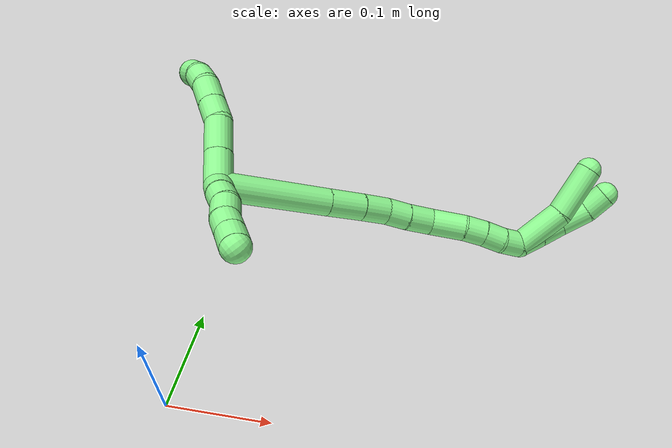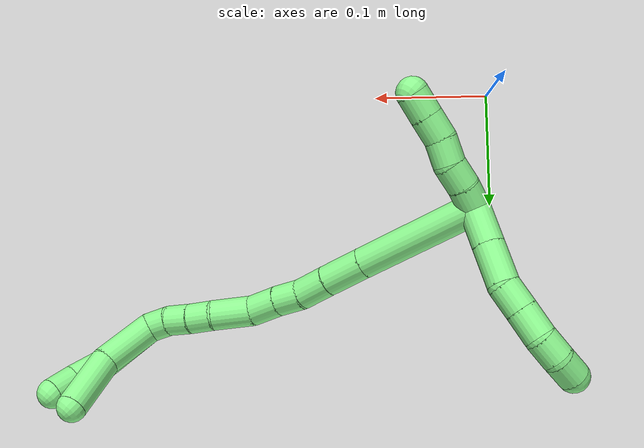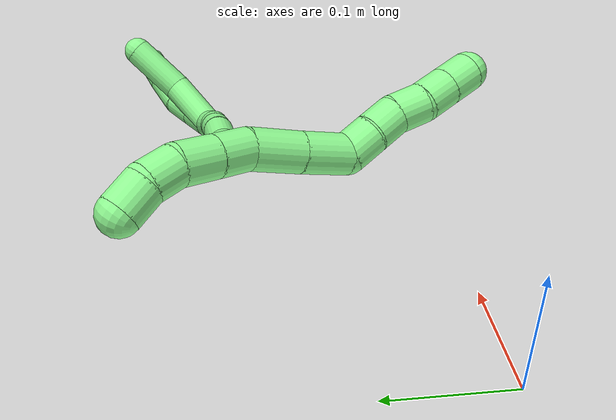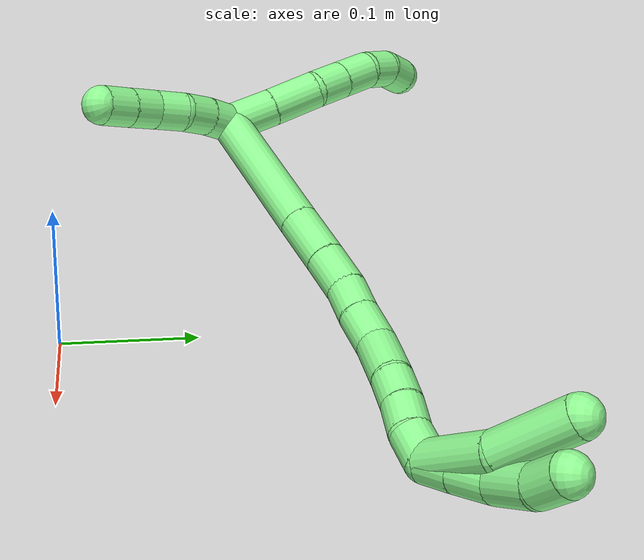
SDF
<sdf version="1.7">
 <world name="default">
  <model name="13">
   <static>0</static>
   <link name="13">
    <collision name="collision-cylinder-e_1_2_8">
     <pose>-0.003845 0.012459 0.008491 -0.97258 -0.249666 0.132477</pose>
     <geometry><cylinder><radius>0.0125</radius><length>0.03112</length></cylinder></geometry>
     <surface>
      <friction><ode><mu>1.16</mu><mu2>1.16</mu2><slip1>0</slip1><slip2>0</slip2></ode></friction>
      <contact><ode><kp>1e+06</kp><kd>1</kd><max_vel>0</max_vel><min_depth>0.001</min_depth></ode></contact>
     </surface>
    </collision>
    <visual name="visual-cylinder-e_1_2_8">
     <pose>-0.003845 0.012459 0.008491 -0.97258 -0.249666 0.132477</pose>
     <geometry><cylinder><radius>0.0125</radius><length>0.03112</length></cylinder></geometry>
     <material><ambient>0.564706 0.984314 0.572549 1</ambient></material>
    </visual>
    <collision name="collision-cylinder-e_2_8_9">
     <pose>-0.012112 0.037784 0.025992 -0.959865 -0.274465 0.143523</pose>
     <geometry><cylinder><radius>0.0125</radius><length>0.032634</length></cylinder></geometry>
     <surface>
      <friction><ode><mu>1.16</mu><mu2>1.16</mu2><slip1>0</slip1><slip2>0</slip2></ode></friction>
      <contact><ode><kp>1e+06</kp><kd>1</kd><max_vel>0</max_vel><min_depth>0.001</min_depth></ode></contact>
     </surface>
    </collision>
    <visual name="visual-cylinder-e_2_8_9">
     <pose>-0.012112 0.037784 0.025992 -0.959865 -0.274465 0.143523</pose>
     <geometry><cylinder><radius>0.0125</radius><length>0.032634</length></cylinder></geometry>
     <material><ambient>0.564706 0.984314 0.572549 1</ambient></material>
    </visual>
    <collision name="collision-cylinder-e_3_9_10">
     <pose>-0.019024 0.060961 0.038055 -1.2829 -0.227488 0.170213</pose>
     <geometry><cylinder><radius>0.0125</radius><length>0.022079</length></cylinder></geometry>
     <surface>
      <friction><ode><mu>1.16</mu><mu2>1.16</mu2><slip1>0</slip1><slip2>0</slip2></ode></friction>
      <contact><ode><kp>1e+06</kp><kd>1</kd><max_vel>0</max_vel><min_depth>0.001</min_depth></ode></contact>
     </surface>
    </collision>
    <visual name="visual-cylinder-e_3_9_10">
     <pose>-0.019024 0.060961 0.038055 -1.2829 -0.227488 0.170213</pose>
     <geometry><cylinder><radius>0.0125</radius><length>0.022079</length></cylinder></geometry>
     <material><ambient>0.564706 0.984314 0.572549 1</ambient></material>
    </visual>
    <collision name="collision-cylinder-e_4_10_11">
     <pose>-0.024205 0.082409 0.04458 -1.26862 -0.226754 0.16716</pose>
     <geometry><cylinder><radius>0.0125</radius><length>0.023941</length></cylinder></geometry>
     <surface>
      <friction><ode><mu>1.16</mu><mu2>1.16</mu2><slip1>0</slip1><slip2>0</slip2></ode></friction>
      <contact><ode><kp>1e+06</kp><kd>1</kd><max_vel>0</max_vel><min_depth>0.001</min_depth></ode></contact>
     </surface>
    </collision>
    <visual name="visual-cylinder-e_4_10_11">
     <pose>-0.024205 0.082409 0.04458 -1.26862 -0.226754 0.16716</pose>
     <geometry><cylinder><radius>0.0125</radius><length>0.023941</length></cylinder></geometry>
     <material><ambient>0.564706 0.984314 0.572549 1</ambient></material>
    </visual>
    <collision name="collision-cylinder-e_5_11_12">
     <pose>-0.027016 0.103504 0.048994 -1.47638 -0.01197 0.01089</pose>
     <geometry><cylinder><radius>0.0125</radius><length>0.020008</length></cylinder></geometry>
     <surface>
      <friction><ode><mu>1.16</mu><mu2>1.16</mu2><slip1>0</slip1><slip2>0</slip2></ode></friction>
      <contact><ode><kp>1e+06</kp><kd>1</kd><max_vel>0</max_vel><min_depth>0.001</min_depth></ode></contact>
     </surface>
    </collision>
    <visual name="visual-cylinder-e_5_11_12">
     <pose>-0.027016 0.103504 0.048994 -1.47638 -0.01197 0.01089</pose>
     <geometry><cylinder><radius>0.0125</radius><length>0.020008</length></cylinder></geometry>
     <material><ambient>0.564706 0.984314 0.572549 1</ambient></material>
    </visual>
    <collision name="collision-cylinder-e_6_12_6">
     <pose>-0.024328 0.123148 0.049228 -1.6439 0.281398 -0.302445</pose>
     <geometry><cylinder><radius>0.0125</radius><length>0.020218</length></cylinder></geometry>
     <surface>
      <friction><ode><mu>1.16</mu><mu2>1.16</mu2><slip1>0</slip1><slip2>0</slip2></ode></friction>
      <contact><ode><kp>1e+06</kp><kd>1</kd><max_vel>0</max_vel><min_depth>0.001</min_depth></ode></contact>
     </surface>
    </collision>
    <visual name="visual-cylinder-e_6_12_6">
     <pose>-0.024328 0.123148 0.049228 -1.6439 0.281398 -0.302445</pose>
     <geometry><cylinder><radius>0.0125</radius><length>0.020218</length></cylinder></geometry>
     <material><ambient>0.564706 0.984314 0.572549 1</ambient></material>
    </visual>
    <collision name="collision-cylinder-e_1_2_13">
     <pose>-0.003091 -0.009377 -0.001587 1.73842 -0.314248 -0.370677</pose>
     <geometry><cylinder><radius>0.0125</radius><length>0.02</length></cylinder></geometry>
     <surface>
      <friction><ode><mu>1.16</mu><mu2>1.16</mu2><slip1>0</slip1><slip2>0</slip2></ode></friction>
      <contact><ode><kp>1e+06</kp><kd>1</kd><max_vel>0</max_vel><min_depth>0.001</min_depth></ode></contact>
     </surface>
    </collision>
    <visual name="visual-cylinder-e_1_2_13">
     <pose>-0.003091 -0.009377 -0.001587 1.73842 -0.314248 -0.370677</pose>
     <geometry><cylinder><radius>0.0125</radius><length>0.02</length></cylinder></geometry>
     <material><ambient>0.564706 0.984314 0.572549 1</ambient></material>
    </visual>
    <collision name="collision-cylinder-e_2_13_14">
     <pose>-0.008111 -0.028502 -0.004296 1.68547 -0.194133 -0.2176</pose>
     <geometry><cylinder><radius>0.0125</radius><length>0.02</length></cylinder></geometry>
     <surface>
      <friction><ode><mu>1.16</mu><mu2>1.16</mu2><slip1>0</slip1><slip2>0</slip2></ode></friction>
      <contact><ode><kp>1e+06</kp><kd>1</kd><max_vel>0</max_vel><min_depth>0.001</min_depth></ode></contact>
     </surface>
    </collision>
    <visual name="visual-cylinder-e_2_13_14">
     <pose>-0.008111 -0.028502 -0.004296 1.68547 -0.194133 -0.2176</pose>
     <geometry><cylinder><radius>0.0125</radius><length>0.02</length></cylinder></geometry>
     <material><ambient>0.564706 0.984314 0.572549 1</ambient></material>
    </visual>
    <collision name="collision-cylinder-e_3_14_15">
     <pose>-0.011674 -0.047307 -0.00933 1.97844 -0.164118 -0.248907</pose>
     <geometry><cylinder><radius>0.0125</radius><length>0.02</length></cylinder></geometry>
     <surface>
      <friction><ode><mu>1.16</mu><mu2>1.16</mu2><slip1>0</slip1><slip2>0</slip2></ode></friction>
      <contact><ode><kp>1e+06</kp><kd>1</kd><max_vel>0</max_vel><min_depth>0.001</min_depth></ode></contact>
     </surface>
    </collision>
    <visual name="visual-cylinder-e_3_14_15">
     <pose>-0.011674 -0.047307 -0.00933 1.97844 -0.164118 -0.248907</pose>
     <geometry><cylinder><radius>0.0125</radius><length>0.02</length></cylinder></geometry>
     <material><ambient>0.564706 0.984314 0.572549 1</ambient></material>
    </visual>
    <collision name="collision-cylinder-e_4_15_16">
     <pose>-0.014579 -0.066142 -0.014909 1.73975 -0.127429 -0.150923</pose>
     <geometry><cylinder><radius>0.0125</radius><length>0.02</length></cylinder></geometry>
     <surface>
      <friction><ode><mu>1.16</mu><mu2>1.16</mu2><slip1>0</slip1><slip2>0</slip2></ode></friction>
      <contact><ode><kp>1e+06</kp><kd>1</kd><max_vel>0</max_vel><min_depth>0.001</min_depth></ode></contact>
     </surface>
    </collision>
    <visual name="visual-cylinder-e_4_15_16">
     <pose>-0.014579 -0.066142 -0.014909 1.73975 -0.127429 -0.150923</pose>
     <geometry><cylinder><radius>0.0125</radius><length>0.02</length></cylinder></geometry>
     <material><ambient>0.564706 0.984314 0.572549 1</ambient></material>
    </visual>
    <collision name="collision-cylinder-e_5_16_5">
     <pose>-0.017222 -0.085667 -0.018335 1.74923 -0.137655 -0.164589</pose>
     <geometry><cylinder><radius>0.0125</radius><length>0.02</length></cylinder></geometry>
     <surface>
      <friction><ode><mu>1.16</mu><mu2>1.16</mu2><slip1>0</slip1><slip2>0</slip2></ode></friction>
      <contact><ode><kp>1e+06</kp><kd>1</kd><max_vel>0</max_vel><min_depth>0.001</min_depth></ode></contact>
     </surface>
    </collision>
    <visual name="visual-cylinder-e_5_16_5">
     <pose>-0.017222 -0.085667 -0.018335 1.74923 -0.137655 -0.164589</pose>
     <geometry><cylinder><radius>0.0125</radius><length>0.02</length></cylinder></geometry>
     <material><ambient>0.564706 0.984314 0.572549 1</ambient></material>
    </visual>
    <collision name="collision-cylinder-e_1_2_17">
     <pose>0.033905 -0.012267 0.034223 0.34418 0.750533 0.136725</pose>
     <geometry><cylinder><radius>0.0125</radius><length>0.099424</length></cylinder></geometry>
     <surface>
      <friction><ode><mu>1.16</mu><mu2>1.16</mu2><slip1>0</slip1><slip2>0</slip2></ode></friction>
      <contact><ode><kp>1e+06</kp><kd>1</kd><max_vel>0</max_vel><min_depth>0.001</min_depth></ode></contact>
     </surface>
    </collision>
    <visual name="visual-cylinder-e_1_2_17">
     <pose>0.033905 -0.012267 0.034223 0.34418 0.750533 0.136725</pose>
     <geometry><cylinder><radius>0.0125</radius><length>0.099424</length></cylinder></geometry>
     <material><ambient>0.564706 0.984314 0.572549 1</ambient></material>
    </visual>
    <collision name="collision-cylinder-e_2_17_18">
     <pose>0.079343 -0.028591 0.080182 0.332828 0.748519 0.131755</pose>
     <geometry><cylinder><radius>0.0125</radius><length>0.033894</length></cylinder></geometry>
     <surface>
      <friction><ode><mu>1.16</mu><mu2>1.16</mu2><slip1>0</slip1><slip2>0</slip2></ode></friction>
      <contact><ode><kp>1e+06</kp><kd>1</kd><max_vel>0</max_vel><min_depth>0.001</min_depth></ode></contact>
     </surface>
    </collision>
    <visual name="visual-cylinder-e_2_17_18">
     <pose>0.079343 -0.028591 0.080182 0.332828 0.748519 0.131755</pose>
     <geometry><cylinder><radius>0.0125</radius><length>0.033894</length></cylinder></geometry>
     <material><ambient>0.564706 0.984314 0.572549 1</ambient></material>
    </visual>
    <collision name="collision-cylinder-e_3_18_19">
     <pose>0.099988 -0.035431 0.100641 0.308848 0.782926 0.128329</pose>
     <geometry><cylinder><radius>0.0125</radius><length>0.025835</length></cylinder></geometry>
     <surface>
      <friction><ode><mu>1.16</mu><mu2>1.16</mu2><slip1>0</slip1><slip2>0</slip2></ode></friction>
      <contact><ode><kp>1e+06</kp><kd>1</kd><max_vel>0</max_vel><min_depth>0.001</min_depth></ode></contact>
     </surface>
    </collision>
    <visual name="visual-cylinder-e_3_18_19">
     <pose>0.099988 -0.035431 0.100641 0.308848 0.782926 0.128329</pose>
     <geometry><cylinder><radius>0.0125</radius><length>0.025835</length></cylinder></geometry>
     <material><ambient>0.564706 0.984314 0.572549 1</ambient></material>
    </visual>
    <collision name="collision-cylinder-e_4_19_20">
     <pose>0.116575 -0.042432 0.11603 0.564146 0.758611 0.230014</pose>
     <geometry><cylinder><radius>0.0125</radius><length>0.021735</length></cylinder></geometry>
     <surface>
      <friction><ode><mu>1.16</mu><mu2>1.16</mu2><slip1>0</slip1><slip2>0</slip2></ode></friction>
      <contact><ode><kp>1e+06</kp><kd>1</kd><max_vel>0</max_vel><min_depth>0.001</min_depth></ode></contact>
     </surface>
    </collision>
    <visual name="visual-cylinder-e_4_19_20">
     <pose>0.116575 -0.042432 0.11603 0.564146 0.758611 0.230014</pose>
     <geometry><cylinder><radius>0.0125</radius><length>0.021735</length></cylinder></geometry>
     <material><ambient>0.564706 0.984314 0.572549 1</ambient></material>
    </visual>
    <collision name="collision-cylinder-e_5_20_21">
     <pose>0.132493 -0.050706 0.13095 0.456747 0.742562 0.180495</pose>
     <geometry><cylinder><radius>0.0125</radius><length>0.024969</length></cylinder></geometry>
     <surface>
      <friction><ode><mu>1.16</mu><mu2>1.16</mu2><slip1>0</slip1><slip2>0</slip2></ode></friction>
      <contact><ode><kp>1e+06</kp><kd>1</kd><max_vel>0</max_vel><min_depth>0.001</min_depth></ode></contact>
     </surface>
    </collision>
    <visual name="visual-cylinder-e_5_20_21">
     <pose>0.132493 -0.050706 0.13095 0.456747 0.742562 0.180495</pose>
     <geometry><cylinder><radius>0.0125</radius><length>0.024969</length></cylinder></geometry>
     <material><ambient>0.564706 0.984314 0.572549 1</ambient></material>
    </visual>
    <collision name="collision-cylinder-e_6_21_22">
     <pose>0.148766 -0.064597 0.150359 0.722648 0.484744 0.186325</pose>
     <geometry><cylinder><radius>0.0125</radius><length>0.033612</length></cylinder></geometry>
     <surface>
      <friction><ode><mu>1.16</mu><mu2>1.16</mu2><slip1>0</slip1><slip2>0</slip2></ode></friction>
      <contact><ode><kp>1e+06</kp><kd>1</kd><max_vel>0</max_vel><min_depth>0.001</min_depth></ode></contact>
     </surface>
    </collision>
    <visual name="visual-cylinder-e_6_21_22">
     <pose>0.148766 -0.064597 0.150359 0.722648 0.484744 0.186325</pose>
     <geometry><cylinder><radius>0.0125</radius><length>0.033612</length></cylinder></geometry>
     <material><ambient>0.564706 0.984314 0.572549 1</ambient></material>
    </visual>
    <collision name="collision-cylinder-e_7_22_23">
     <pose>0.162713 -0.079671 0.167655 0.706076 0.648299 0.246362</pose>
     <geometry><cylinder><radius>0.0125</radius><length>0.020257</length></cylinder></geometry>
     <surface>
      <friction><ode><mu>1.16</mu><mu2>1.16</mu2><slip1>0</slip1><slip2>0</slip2></ode></friction>
      <contact><ode><kp>1e+06</kp><kd>1</kd><max_vel>0</max_vel><min_depth>0.001</min_depth></ode></contact>
     </surface>
    </collision>
    <visual name="visual-cylinder-e_7_22_23">
     <pose>0.162713 -0.079671 0.167655 0.706076 0.648299 0.246362</pose>
     <geometry><cylinder><radius>0.0125</radius><length>0.020257</length></cylinder></geometry>
     <material><ambient>0.564706 0.984314 0.572549 1</ambient></material>
    </visual>
    <collision name="collision-cylinder-e_8_23_24">
     <pose>0.175355 -0.090317 0.179222 0.783973 0.705644 0.302118</pose>
     <geometry><cylinder><radius>0.0125</radius><length>0.020123</length></cylinder></geometry>
     <surface>
      <friction><ode><mu>1.16</mu><mu2>1.16</mu2><slip1>0</slip1><slip2>0</slip2></ode></friction>
      <contact><ode><kp>1e+06</kp><kd>1</kd><max_vel>0</max_vel><min_depth>0.001</min_depth></ode></contact>
     </surface>
    </collision>
    <visual name="visual-cylinder-e_8_23_24">
     <pose>0.175355 -0.090317 0.179222 0.783973 0.705644 0.302118</pose>
     <geometry><cylinder><radius>0.0125</radius><length>0.020123</length></cylinder></geometry>
     <material><ambient>0.564706 0.984314 0.572549 1</ambient></material>
    </visual>
    <collision name="collision-cylinder-e_9_24_1">
     <pose>0.188668 -0.099314 0.191168 0.503057 0.739303 0.198479</pose>
     <geometry><cylinder><radius>0.0125</radius><length>0.020151</length></cylinder></geometry>
     <surface>
      <friction><ode><mu>1.16</mu><mu2>1.16</mu2><slip1>0</slip1><slip2>0</slip2></ode></friction>
      <contact><ode><kp>1e+06</kp><kd>1</kd><max_vel>0</max_vel><min_depth>0.001</min_depth></ode></contact>
     </surface>
    </collision>
    <visual name="visual-cylinder-e_9_24_1">
     <pose>0.188668 -0.099314 0.191168 0.503057 0.739303 0.198479</pose>
     <geometry><cylinder><radius>0.0125</radius><length>0.020151</length></cylinder></geometry>
     <material><ambient>0.564706 0.984314 0.572549 1</ambient></material>
    </visual>
    <collision name="collision-cylinder-e_1_1_25">
     <pose>0.197315 -0.104277 0.208351 0.128167 0.171182 0.011012</pose>
     <geometry><cylinder><radius>0.0125</radius><length>0.021816</length></cylinder></geometry>
     <surface>
      <friction><ode><mu>1.16</mu><mu2>1.16</mu2><slip1>0</slip1><slip2>0</slip2></ode></friction>
      <contact><ode><kp>1e+06</kp><kd>1</kd><max_vel>0</max_vel><min_depth>0.001</min_depth></ode></contact>
     </surface>
    </collision>
    <visual name="visual-cylinder-e_1_1_25">
     <pose>0.197315 -0.104277 0.208351 0.128167 0.171182 0.011012</pose>
     <geometry><cylinder><radius>0.0125</radius><length>0.021816</length></cylinder></geometry>
     <material><ambient>0.564706 0.984314 0.572549 1</ambient></material>
    </visual>
    <collision name="collision-cylinder-e_2_25_26">
     <pose>0.200952 -0.107111 0.231116 0.120054 0.144916 0.008725</pose>
     <geometry><cylinder><radius>0.0125</radius><length>0.024642</length></cylinder></geometry>
     <surface>
      <friction><ode><mu>1.16</mu><mu2>1.16</mu2><slip1>0</slip1><slip2>0</slip2></ode></friction>
      <contact><ode><kp>1e+06</kp><kd>1</kd><max_vel>0</max_vel><min_depth>0.001</min_depth></ode></contact>
     </surface>
    </collision>
    <visual name="visual-cylinder-e_2_25_26">
     <pose>0.200952 -0.107111 0.231116 0.120054 0.144916 0.008725</pose>
     <geometry><cylinder><radius>0.0125</radius><length>0.024642</length></cylinder></geometry>
     <material><ambient>0.564706 0.984314 0.572549 1</ambient></material>
    </visual>
    <collision name="collision-cylinder-e_3_26_27">
     <pose>0.201969 -0.113155 0.257635 0.307891 -0.050333 -0.007812</pose>
     <geometry><cylinder><radius>0.0125</radius><length>0.030291</length></cylinder></geometry>
     <surface>
      <friction><ode><mu>1.16</mu><mu2>1.16</mu2><slip1>0</slip1><slip2>0</slip2></ode></friction>
      <contact><ode><kp>1e+06</kp><kd>1</kd><max_vel>0</max_vel><min_depth>0.001</min_depth></ode></contact>
     </surface>
    </collision>
    <visual name="visual-cylinder-e_3_26_27">
     <pose>0.201969 -0.113155 0.257635 0.307891 -0.050333 -0.007812</pose>
     <geometry><cylinder><radius>0.0125</radius><length>0.030291</length></cylinder></geometry>
     <material><ambient>0.564706 0.984314 0.572549 1</ambient></material>
    </visual>
    <collision name="collision-cylinder-e_4_27_4">
     <pose>0.197226 -0.120469 0.282626 0.252569 -0.349524 -0.044825</pose>
     <geometry><cylinder><radius>0.0125</radius><length>0.023251</length></cylinder></geometry>
     <surface>
      <friction><ode><mu>1.16</mu><mu2>1.16</mu2><slip1>0</slip1><slip2>0</slip2></ode></friction>
      <contact><ode><kp>1e+06</kp><kd>1</kd><max_vel>0</max_vel><min_depth>0.001</min_depth></ode></contact>
     </surface>
    </collision>
    <visual name="visual-cylinder-e_4_27_4">
     <pose>0.197226 -0.120469 0.282626 0.252569 -0.349524 -0.044825</pose>
     <geometry><cylinder><radius>0.0125</radius><length>0.023251</length></cylinder></geometry>
     <material><ambient>0.564706 0.984314 0.572549 1</ambient></material>
    </visual>
    <collision name="collision-cylinder-e_1_1_28">
     <pose>0.191381 -0.106733 0.221754 0.157839 -0.165708 -0.013135</pose>
     <geometry><cylinder><radius>0.0125</radius><length>0.04941</length></cylinder></geometry>
     <surface>
      <friction><ode><mu>1.16</mu><mu2>1.16</mu2><slip1>0</slip1><slip2>0</slip2></ode></friction>
      <contact><ode><kp>1e+06</kp><kd>1</kd><max_vel>0</max_vel><min_depth>0.001</min_depth></ode></contact>
     </surface>
    </collision>
    <visual name="visual-cylinder-e_1_1_28">
     <pose>0.191381 -0.106733 0.221754 0.157839 -0.165708 -0.013135</pose>
     <geometry><cylinder><radius>0.0125</radius><length>0.04941</length></cylinder></geometry>
     <material><ambient>0.564706 0.984314 0.572549 1</ambient></material>
    </visual>
    <collision name="collision-cylinder-e_2_28_3">
     <pose>0.178102 -0.107959 0.269235 -0.110783 -0.37241 0.020891</pose>
     <geometry><cylinder><radius>0.0125</radius><length>0.05059</length></cylinder></geometry>
     <surface>
      <friction><ode><mu>1.16</mu><mu2>1.16</mu2><slip1>0</slip1><slip2>0</slip2></ode></friction>
      <contact><ode><kp>1e+06</kp><kd>1</kd><max_vel>0</max_vel><min_depth>0.001</min_depth></ode></contact>
     </surface>
    </collision>
    <visual name="visual-cylinder-e_2_28_3">
     <pose>0.178102 -0.107959 0.269235 -0.110783 -0.37241 0.020891</pose>
     <geometry><cylinder><radius>0.0125</radius><length>0.05059</length></cylinder></geometry>
     <material><ambient>0.564706 0.984314 0.572549 1</ambient></material>
    </visual>
    <collision name="collision-sphere-3">
     <pose>0.168899 -0.105354 0.292651 0 -0 0</pose>
     <geometry><sphere><radius>0.0125</radius></sphere></geometry>
     <surface>
      <friction><ode><mu>1.16</mu><mu2>1.16</mu2><slip1>0</slip1><slip2>0</slip2></ode></friction>
      <contact><ode><kp>1e+06</kp><kd>1</kd><max_vel>0</max_vel><min_depth>0.001</min_depth></ode></contact>
     </surface>
    </collision>
    <visual name="visual-sphere-3">
     <pose>0.168899 -0.105354 0.292651 0 -0 0</pose>
     <geometry><sphere><radius>0.0125</radius></sphere></geometry>
     <material><ambient>0.564706 0.984314 0.572549 1</ambient></material>
    </visual>
    <collision name="collision-sphere-28">
     <pose>0.187306 -0.110564 0.245818 0 -0 0</pose>
     <geometry><sphere><radius>0.0125</radius></sphere></geometry>
     <surface>
      <friction><ode><mu>1.16</mu><mu2>1.16</mu2><slip1>0</slip1><slip2>0</slip2></ode></friction>
      <contact><ode><kp>1e+06</kp><kd>1</kd><max_vel>0</max_vel><min_depth>0.001</min_depth></ode></contact>
     </surface>
    </collision>
    <visual name="visual-sphere-28">
     <pose>0.187306 -0.110564 0.245818 0 -0 0</pose>
     <geometry><sphere><radius>0.0125</radius></sphere></geometry>
     <material><ambient>0.564706 0.984314 0.572549 1</ambient></material>
    </visual>
    <collision name="collision-sphere-4">
     <pose>0.193245 -0.123198 0.293202 0 -0 0</pose>
     <geometry><sphere><radius>0.0125</radius></sphere></geometry>
     <surface>
      <friction><ode><mu>1.16</mu><mu2>1.16</mu2><slip1>0</slip1><slip2>0</slip2></ode></friction>
      <contact><ode><kp>1e+06</kp><kd>1</kd><max_vel>0</max_vel><min_depth>0.001</min_depth></ode></contact>
     </surface>
    </collision>
    <visual name="visual-sphere-4">
     <pose>0.193245 -0.123198 0.293202 0 -0 0</pose>
     <geometry><sphere><radius>0.0125</radius></sphere></geometry>
     <material><ambient>0.564706 0.984314 0.572549 1</ambient></material>
    </visual>
    <collision name="collision-sphere-27">
     <pose>0.201207 -0.11774 0.27205 0 -0 0</pose>
     <geometry><sphere><radius>0.0125</radius></sphere></geometry>
     <surface>
      <friction><ode><mu>1.16</mu><mu2>1.16</mu2><slip1>0</slip1><slip2>0</slip2></ode></friction>
      <contact><ode><kp>1e+06</kp><kd>1</kd><max_vel>0</max_vel><min_depth>0.001</min_depth></ode></contact>
     </surface>
    </collision>
    <visual name="visual-sphere-27">
     <pose>0.201207 -0.11774 0.27205 0 -0 0</pose>
     <geometry><sphere><radius>0.0125</radius></sphere></geometry>
     <material><ambient>0.564706 0.984314 0.572549 1</ambient></material>
    </visual>
    <collision name="collision-sphere-26">
     <pose>0.202731 -0.108571 0.243219 0 -0 0</pose>
     <geometry><sphere><radius>0.0125</radius></sphere></geometry>
     <surface>
      <friction><ode><mu>1.16</mu><mu2>1.16</mu2><slip1>0</slip1><slip2>0</slip2></ode></friction>
      <contact><ode><kp>1e+06</kp><kd>1</kd><max_vel>0</max_vel><min_depth>0.001</min_depth></ode></contact>
     </surface>
    </collision>
    <visual name="visual-sphere-26">
     <pose>0.202731 -0.108571 0.243219 0 -0 0</pose>
     <geometry><sphere><radius>0.0125</radius></sphere></geometry>
     <material><ambient>0.564706 0.984314 0.572549 1</ambient></material>
    </visual>
    <collision name="collision-sphere-25">
     <pose>0.199173 -0.105651 0.219012 0 -0 0</pose>
     <geometry><sphere><radius>0.0125</radius></sphere></geometry>
     <surface>
      <friction><ode><mu>1.16</mu><mu2>1.16</mu2><slip1>0</slip1><slip2>0</slip2></ode></friction>
      <contact><ode><kp>1e+06</kp><kd>1</kd><max_vel>0</max_vel><min_depth>0.001</min_depth></ode></contact>
     </surface>
    </collision>
    <visual name="visual-sphere-25">
     <pose>0.199173 -0.105651 0.219012 0 -0 0</pose>
     <geometry><sphere><radius>0.0125</radius></sphere></geometry>
     <material><ambient>0.564706 0.984314 0.572549 1</ambient></material>
    </visual>
    <collision name="collision-sphere-1">
     <pose>0.195457 -0.102903 0.197691 0 -0 0</pose>
     <geometry><sphere><radius>0.0125</radius></sphere></geometry>
     <surface>
      <friction><ode><mu>1.16</mu><mu2>1.16</mu2><slip1>0</slip1><slip2>0</slip2></ode></friction>
      <contact><ode><kp>1e+06</kp><kd>1</kd><max_vel>0</max_vel><min_depth>0.001</min_depth></ode></contact>
     </surface>
    </collision>
    <visual name="visual-sphere-1">
     <pose>0.195457 -0.102903 0.197691 0 -0 0</pose>
     <geometry><sphere><radius>0.0125</radius></sphere></geometry>
     <material><ambient>0.564706 0.984314 0.572549 1</ambient></material>
    </visual>
    <collision name="collision-sphere-24">
     <pose>0.18188 -0.095725 0.184645 0 -0 0</pose>
     <geometry><sphere><radius>0.0125</radius></sphere></geometry>
     <surface>
      <friction><ode><mu>1.16</mu><mu2>1.16</mu2><slip1>0</slip1><slip2>0</slip2></ode></friction>
      <contact><ode><kp>1e+06</kp><kd>1</kd><max_vel>0</max_vel><min_depth>0.001</min_depth></ode></contact>
     </surface>
    </collision>
    <visual name="visual-sphere-24">
     <pose>0.18188 -0.095725 0.184645 0 -0 0</pose>
     <geometry><sphere><radius>0.0125</radius></sphere></geometry>
     <material><ambient>0.564706 0.984314 0.572549 1</ambient></material>
    </visual>
    <collision name="collision-sphere-23">
     <pose>0.16883 -0.084909 0.173799 0 -0 0</pose>
     <geometry><sphere><radius>0.0125</radius></sphere></geometry>
     <surface>
      <friction><ode><mu>1.16</mu><mu2>1.16</mu2><slip1>0</slip1><slip2>0</slip2></ode></friction>
      <contact><ode><kp>1e+06</kp><kd>1</kd><max_vel>0</max_vel><min_depth>0.001</min_depth></ode></contact>
     </surface>
    </collision>
    <visual name="visual-sphere-23">
     <pose>0.16883 -0.084909 0.173799 0 -0 0</pose>
     <geometry><sphere><radius>0.0125</radius></sphere></geometry>
     <material><ambient>0.564706 0.984314 0.572549 1</ambient></material>
    </visual>
    <collision name="collision-sphere-22">
     <pose>0.156597 -0.074432 0.161512 0 -0 0</pose>
     <geometry><sphere><radius>0.0125</radius></sphere></geometry>
     <surface>
      <friction><ode><mu>1.16</mu><mu2>1.16</mu2><slip1>0</slip1><slip2>0</slip2></ode></friction>
      <contact><ode><kp>1e+06</kp><kd>1</kd><max_vel>0</max_vel><min_depth>0.001</min_depth></ode></contact>
     </surface>
    </collision>
    <visual name="visual-sphere-22">
     <pose>0.156597 -0.074432 0.161512 0 -0 0</pose>
     <geometry><sphere><radius>0.0125</radius></sphere></geometry>
     <material><ambient>0.564706 0.984314 0.572549 1</ambient></material>
    </visual>
    <collision name="collision-sphere-21">
     <pose>0.140935 -0.054763 0.139205 0 -0 0</pose>
     <geometry><sphere><radius>0.0125</radius></sphere></geometry>
     <surface>
      <friction><ode><mu>1.16</mu><mu2>1.16</mu2><slip1>0</slip1><slip2>0</slip2></ode></friction>
      <contact><ode><kp>1e+06</kp><kd>1</kd><max_vel>0</max_vel><min_depth>0.001</min_depth></ode></contact>
     </surface>
    </collision>
    <visual name="visual-sphere-21">
     <pose>0.140935 -0.054763 0.139205 0 -0 0</pose>
     <geometry><sphere><radius>0.0125</radius></sphere></geometry>
     <material><ambient>0.564706 0.984314 0.572549 1</ambient></material>
    </visual>
    <collision name="collision-sphere-12">
     <pose>-0.027135 0.113463 0.049938 0 -0 0</pose>
     <geometry><sphere><radius>0.0125</radius></sphere></geometry>
     <surface>
      <friction><ode><mu>1.16</mu><mu2>1.16</mu2><slip1>0</slip1><slip2>0</slip2></ode></friction>
      <contact><ode><kp>1e+06</kp><kd>1</kd><max_vel>0</max_vel><min_depth>0.001</min_depth></ode></contact>
     </surface>
    </collision>
    <visual name="visual-sphere-12">
     <pose>-0.027135 0.113463 0.049938 0 -0 0</pose>
     <geometry><sphere><radius>0.0125</radius></sphere></geometry>
     <material><ambient>0.564706 0.984314 0.572549 1</ambient></material>
    </visual>
    <collision name="collision-sphere-11">
     <pose>-0.026896 0.093545 0.048051 0 -0 0</pose>
     <geometry><sphere><radius>0.0125</radius></sphere></geometry>
     <surface>
      <friction><ode><mu>1.16</mu><mu2>1.16</mu2><slip1>0</slip1><slip2>0</slip2></ode></friction>
      <contact><ode><kp>1e+06</kp><kd>1</kd><max_vel>0</max_vel><min_depth>0.001</min_depth></ode></contact>
     </surface>
    </collision>
    <visual name="visual-sphere-11">
     <pose>-0.026896 0.093545 0.048051 0 -0 0</pose>
     <geometry><sphere><radius>0.0125</radius></sphere></geometry>
     <material><ambient>0.564706 0.984314 0.572549 1</ambient></material>
    </visual>
    <collision name="collision-sphere-10">
     <pose>-0.021514 0.071274 0.041109 0 -0 0</pose>
     <geometry><sphere><radius>0.0125</radius></sphere></geometry>
     <surface>
      <friction><ode><mu>1.16</mu><mu2>1.16</mu2><slip1>0</slip1><slip2>0</slip2></ode></friction>
      <contact><ode><kp>1e+06</kp><kd>1</kd><max_vel>0</max_vel><min_depth>0.001</min_depth></ode></contact>
     </surface>
    </collision>
    <visual name="visual-sphere-10">
     <pose>-0.021514 0.071274 0.041109 0 -0 0</pose>
     <geometry><sphere><radius>0.0125</radius></sphere></geometry>
     <material><ambient>0.564706 0.984314 0.572549 1</ambient></material>
    </visual>
    <collision name="collision-sphere-9">
     <pose>-0.016534 0.050649 0.035002 0 -0 0</pose>
     <geometry><sphere><radius>0.0125</radius></sphere></geometry>
     <surface>
      <friction><ode><mu>1.16</mu><mu2>1.16</mu2><slip1>0</slip1><slip2>0</slip2></ode></friction>
      <contact><ode><kp>1e+06</kp><kd>1</kd><max_vel>0</max_vel><min_depth>0.001</min_depth></ode></contact>
     </surface>
    </collision>
    <visual name="visual-sphere-9">
     <pose>-0.016534 0.050649 0.035002 0 -0 0</pose>
     <geometry><sphere><radius>0.0125</radius></sphere></geometry>
     <material><ambient>0.564706 0.984314 0.572549 1</ambient></material>
    </visual>
    <collision name="collision-sphere-2">
     <geometry><sphere><radius>0.0125</radius></sphere></geometry>
     <surface>
      <friction><ode><mu>1.16</mu><mu2>1.16</mu2><slip1>0</slip1><slip2>0</slip2></ode></friction>
      <contact><ode><kp>1e+06</kp><kd>1</kd><max_vel>0</max_vel><min_depth>0.001</min_depth></ode></contact>
     </surface>
    </collision>
    <visual name="visual-sphere-2">
     <geometry><sphere><radius>0.0125</radius></sphere></geometry>
     <material><ambient>0.564706 0.984314 0.572549 1</ambient></material>
    </visual>
    <collision name="collision-sphere-19">
     <pose>0.109099 -0.038215 0.109365 0 -0 0</pose>
     <geometry><sphere><radius>0.0125</radius></sphere></geometry>
     <surface>
      <friction><ode><mu>1.16</mu><mu2>1.16</mu2><slip1>0</slip1><slip2>0</slip2></ode></friction>
      <contact><ode><kp>1e+06</kp><kd>1</kd><max_vel>0</max_vel><min_depth>0.001</min_depth></ode></contact>
     </surface>
    </collision>
    <visual name="visual-sphere-19">
     <pose>0.109099 -0.038215 0.109365 0 -0 0</pose>
     <geometry><sphere><radius>0.0125</radius></sphere></geometry>
     <material><ambient>0.564706 0.984314 0.572549 1</ambient></material>
    </visual>
    <collision name="collision-sphere-8">
     <pose>-0.007689 0.024918 0.016982 0 -0 0</pose>
     <geometry><sphere><radius>0.0125</radius></sphere></geometry>
     <surface>
      <friction><ode><mu>1.16</mu><mu2>1.16</mu2><slip1>0</slip1><slip2>0</slip2></ode></friction>
      <contact><ode><kp>1e+06</kp><kd>1</kd><max_vel>0</max_vel><min_depth>0.001</min_depth></ode></contact>
     </surface>
    </collision>
    <visual name="visual-sphere-8">
     <pose>-0.007689 0.024918 0.016982 0 -0 0</pose>
     <geometry><sphere><radius>0.0125</radius></sphere></geometry>
     <material><ambient>0.564706 0.984314 0.572549 1</ambient></material>
    </visual>
    <collision name="collision-sphere-6">
     <pose>-0.021521 0.132833 0.048519 0 -0 0</pose>
     <geometry><sphere><radius>0.0125</radius></sphere></geometry>
     <surface>
      <friction><ode><mu>1.16</mu><mu2>1.16</mu2><slip1>0</slip1><slip2>0</slip2></ode></friction>
      <contact><ode><kp>1e+06</kp><kd>1</kd><max_vel>0</max_vel><min_depth>0.001</min_depth></ode></contact>
     </surface>
    </collision>
    <visual name="visual-sphere-6">
     <pose>-0.021521 0.132833 0.048519 0 -0 0</pose>
     <geometry><sphere><radius>0.0125</radius></sphere></geometry>
     <material><ambient>0.564706 0.984314 0.572549 1</ambient></material>
    </visual>
    <collision name="collision-sphere-13">
     <pose>-0.006182 -0.018754 -0.003173 0 -0 0</pose>
     <geometry><sphere><radius>0.0125</radius></sphere></geometry>
     <surface>
      <friction><ode><mu>1.16</mu><mu2>1.16</mu2><slip1>0</slip1><slip2>0</slip2></ode></friction>
      <contact><ode><kp>1e+06</kp><kd>1</kd><max_vel>0</max_vel><min_depth>0.001</min_depth></ode></contact>
     </surface>
    </collision>
    <visual name="visual-sphere-13">
     <pose>-0.006182 -0.018754 -0.003173 0 -0 0</pose>
     <geometry><sphere><radius>0.0125</radius></sphere></geometry>
     <material><ambient>0.564706 0.984314 0.572549 1</ambient></material>
    </visual>
    <collision name="collision-sphere-14">
     <pose>-0.01004 -0.038249 -0.005419 0 -0 0</pose>
     <geometry><sphere><radius>0.0125</radius></sphere></geometry>
     <surface>
      <friction><ode><mu>1.16</mu><mu2>1.16</mu2><slip1>0</slip1><slip2>0</slip2></ode></friction>
      <contact><ode><kp>1e+06</kp><kd>1</kd><max_vel>0</max_vel><min_depth>0.001</min_depth></ode></contact>
     </surface>
    </collision>
    <visual name="visual-sphere-14">
     <pose>-0.01004 -0.038249 -0.005419 0 -0 0</pose>
     <geometry><sphere><radius>0.0125</radius></sphere></geometry>
     <material><ambient>0.564706 0.984314 0.572549 1</ambient></material>
    </visual>
    <collision name="collision-sphere-15">
     <pose>-0.013308 -0.056364 -0.013241 0 -0 0</pose>
     <geometry><sphere><radius>0.0125</radius></sphere></geometry>
     <surface>
      <friction><ode><mu>1.16</mu><mu2>1.16</mu2><slip1>0</slip1><slip2>0</slip2></ode></friction>
      <contact><ode><kp>1e+06</kp><kd>1</kd><max_vel>0</max_vel><min_depth>0.001</min_depth></ode></contact>
     </surface>
    </collision>
    <visual name="visual-sphere-15">
     <pose>-0.013308 -0.056364 -0.013241 0 -0 0</pose>
     <geometry><sphere><radius>0.0125</radius></sphere></geometry>
     <material><ambient>0.564706 0.984314 0.572549 1</ambient></material>
    </visual>
    <collision name="collision-sphere-16">
     <pose>-0.01585 -0.075919 -0.016577 0 -0 0</pose>
     <geometry><sphere><radius>0.0125</radius></sphere></geometry>
     <surface>
      <friction><ode><mu>1.16</mu><mu2>1.16</mu2><slip1>0</slip1><slip2>0</slip2></ode></friction>
      <contact><ode><kp>1e+06</kp><kd>1</kd><max_vel>0</max_vel><min_depth>0.001</min_depth></ode></contact>
     </surface>
    </collision>
    <visual name="visual-sphere-16">
     <pose>-0.01585 -0.075919 -0.016577 0 -0 0</pose>
     <geometry><sphere><radius>0.0125</radius></sphere></geometry>
     <material><ambient>0.564706 0.984314 0.572549 1</ambient></material>
    </visual>
    <collision name="collision-sphere-5">
     <pose>-0.018594 -0.095416 -0.020093 0 -0 0</pose>
     <geometry><sphere><radius>0.0125</radius></sphere></geometry>
     <surface>
      <friction><ode><mu>1.16</mu><mu2>1.16</mu2><slip1>0</slip1><slip2>0</slip2></ode></friction>
      <contact><ode><kp>1e+06</kp><kd>1</kd><max_vel>0</max_vel><min_depth>0.001</min_depth></ode></contact>
     </surface>
    </collision>
    <visual name="visual-sphere-5">
     <pose>-0.018594 -0.095416 -0.020093 0 -0 0</pose>
     <geometry><sphere><radius>0.0125</radius></sphere></geometry>
     <material><ambient>0.564706 0.984314 0.572549 1</ambient></material>
    </visual>
    <collision name="collision-sphere-17">
     <pose>0.06781 -0.024534 0.068447 0 -0 0</pose>
     <geometry><sphere><radius>0.0125</radius></sphere></geometry>
     <surface>
      <friction><ode><mu>1.16</mu><mu2>1.16</mu2><slip1>0</slip1><slip2>0</slip2></ode></friction>
      <contact><ode><kp>1e+06</kp><kd>1</kd><max_vel>0</max_vel><min_depth>0.001</min_depth></ode></contact>
     </surface>
    </collision>
    <visual name="visual-sphere-17">
     <pose>0.06781 -0.024534 0.068447 0 -0 0</pose>
     <geometry><sphere><radius>0.0125</radius></sphere></geometry>
     <material><ambient>0.564706 0.984314 0.572549 1</ambient></material>
    </visual>
    <collision name="collision-sphere-18">
     <pose>0.090876 -0.032648 0.091918 0 -0 0</pose>
     <geometry><sphere><radius>0.0125</radius></sphere></geometry>
     <surface>
      <friction><ode><mu>1.16</mu><mu2>1.16</mu2><slip1>0</slip1><slip2>0</slip2></ode></friction>
      <contact><ode><kp>1e+06</kp><kd>1</kd><max_vel>0</max_vel><min_depth>0.001</min_depth></ode></contact>
     </surface>
    </collision>
    <visual name="visual-sphere-18">
     <pose>0.090876 -0.032648 0.091918 0 -0 0</pose>
     <geometry><sphere><radius>0.0125</radius></sphere></geometry>
     <material><ambient>0.564706 0.984314 0.572549 1</ambient></material>
    </visual>
    <collision name="collision-sphere-20">
     <pose>0.124051 -0.04665 0.122695 0 -0 0</pose>
     <geometry><sphere><radius>0.0125</radius></sphere></geometry>
     <surface>
      <friction><ode><mu>1.16</mu><mu2>1.16</mu2><slip1>0</slip1><slip2>0</slip2></ode></friction>
      <contact><ode><kp>1e+06</kp><kd>1</kd><max_vel>0</max_vel><min_depth>0.001</min_depth></ode></contact>
     </surface>
    </collision>
    <visual name="visual-sphere-20">
     <pose>0.124051 -0.04665 0.122695 0 -0 0</pose>
     <geometry><sphere><radius>0.0125</radius></sphere></geometry>
     <material><ambient>0.564706 0.984314 0.572549 1</ambient></material>
    </visual>
    <inertial>
     <pose>0.086531 -0.040019 0.111521 0 -0 0</pose>
     <mass>0.75</mass>
     <inertia><ixx>0.000152</ixx><ixy>0</ixy><ixz>0</ixz><iyy>0.000143</iyy><iyz>0</iyz><izz>-2e-06</izz></inertia>
    </inertial>
   </link>
   <pose>0.040005 0.121382 0.170757 -0.51981 1.25901 0.273952</pose>
  </model>
 </world>
</sdf>
